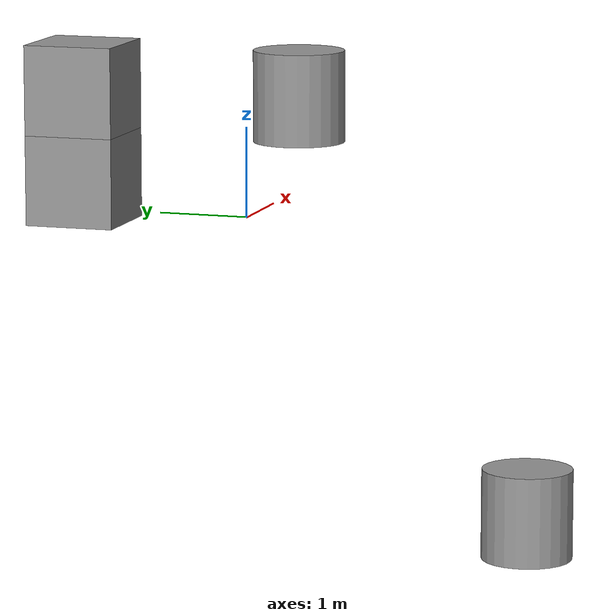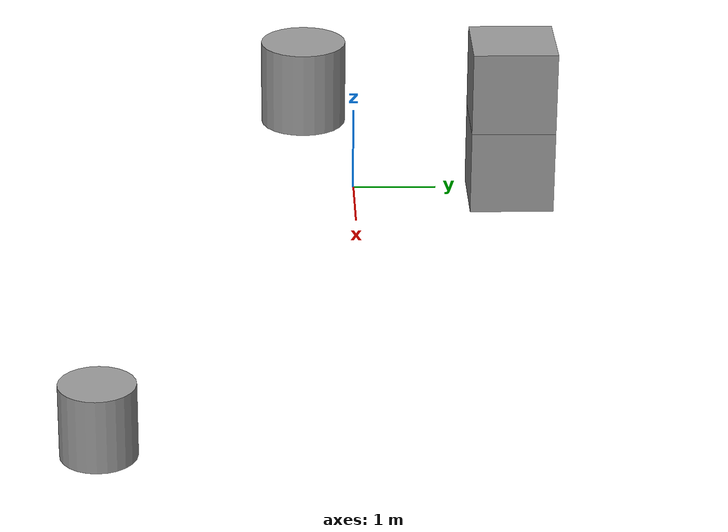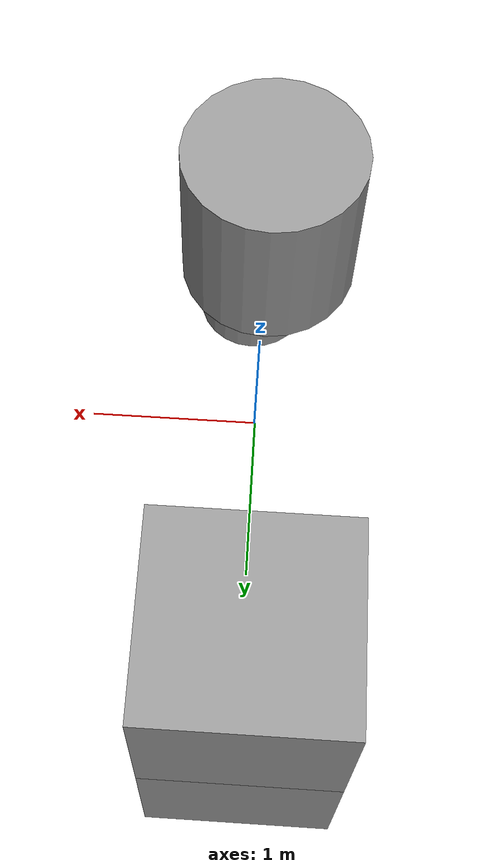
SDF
<?xml version='1.0'?>
<sdf version='1.6'>
  <model name='RobotArm'>
    <link name='link_2'>
      <inertial>
        <mass>1</mass>
        <inertia>
          <ixx>0.145833</ixx>
          <ixy>0</ixy>
          <ixz>0</ixz>
          <iyy>0.145833</iyy>
          <iyz>0</iyz>
          <izz>0.125</izz>
        </inertia>
      </inertial>
      <pose frame=''>0.06833 -3.17939 -3.125 0 -0 0</pose>
      <visual name='visual'>
        <pose frame=''>0 0 0 0 -0 0</pose>
        <geometry>
          <cylinder>
            <radius>0.5</radius>
            <length>1</length>
          </cylinder>
        </geometry>
        <material>
          <lighting>1</lighting>
          <script>
            <uri>file://media/materials/scripts/gazebo.material</uri>
            <name>Gazebo/Grey</name>
          </script>
          <emissive>0 0 0 1</emissive>
        </material>
        <transparency>0</transparency>
        <cast_shadows>1</cast_shadows>
      </visual>
      <collision name='collision'>
        <laser_retro>0</laser_retro>
        <max_contacts>10</max_contacts>
        <pose frame=''>0 0 0 0 -0 0</pose>
        <geometry>
          <cylinder>
            <radius>0.5</radius>
            <length>1</length>
          </cylinder>
        </geometry>
        <surface>
          <friction>
            <ode>
              <mu>1</mu>
              <mu2>1</mu2>
              <fdir1>0 0 0</fdir1>
              <slip1>0</slip1>
              <slip2>0</slip2>
            </ode>
            <torsional>
              <coefficient>1</coefficient>
              <patch_radius>0</patch_radius>
              <surface_radius>0</surface_radius>
              <use_patch_radius>1</use_patch_radius>
              <ode>
                <slip>0</slip>
              </ode>
            </torsional>
          </friction>
          <bounce>
            <restitution_coefficient>0</restitution_coefficient>
            <threshold>1e+06</threshold>
          </bounce>
          <contact>
            <collide_without_contact>0</collide_without_contact>
            <collide_without_contact_bitmask>1</collide_without_contact_bitmask>
            <collide_bitmask>1</collide_bitmask>
            <ode>
              <soft_cfm>0</soft_cfm>
              <soft_erp>0.2</soft_erp>
              <kp>1e+13</kp>
              <kd>1</kd>
              <max_vel>0.01</max_vel>
              <min_depth>0</min_depth>
            </ode>
            <bullet>
              <split_impulse>1</split_impulse>
              <split_impulse_penetration_threshold>-0.01</split_impulse_penetration_threshold>
              <soft_cfm>0</soft_cfm>
              <soft_erp>0.2</soft_erp>
              <kp>1e+13</kp>
              <kd>1</kd>
            </bullet>
          </contact>
        </surface>
      </collision>
    </link>
    <link name='link_3'>
      <inertial>
        <mass>1</mass>
        <inertia>
          <ixx>0.145833</ixx>
          <ixy>0</ixy>
          <ixz>0</ixz>
          <iyy>0.145833</iyy>
          <iyz>0</iyz>
          <izz>0.125</izz>
        </inertia>
        <pose frame=''>0 0 2.01 0 -0 0</pose>
      </inertial>
      <pose frame=''>-0.022777 -0.606869 1.375 0 -0 0</pose>
      <gravity>0</gravity>
      <self_collide>0</self_collide>
      <kinematic>0</kinematic>
      <enable_wind>0</enable_wind>
      <visual name='visual'>
        <pose frame=''>0 0 0 0 -0 0</pose>
        <geometry>
          <cylinder>
            <radius>0.5</radius>
            <length>1</length>
          </cylinder>
        </geometry>
        <material>
          <lighting>1</lighting>
          <script>
            <uri>file://media/materials/scripts/gazebo.material</uri>
            <name>Gazebo/Grey</name>
          </script>
          <shader type='vertex'>
            <normal_map>__default__</normal_map>
          </shader>
          <ambient>0.3 0.3 0.3 1</ambient>
          <diffuse>0.7 0.7 0.7 1</diffuse>
          <specular>0.01 0.01 0.01 1</specular>
          <emissive>0 0 0 1</emissive>
        </material>
        <transparency>0</transparency>
        <cast_shadows>1</cast_shadows>
      </visual>
      <collision name='collision'>
        <laser_retro>0</laser_retro>
        <max_contacts>10</max_contacts>
        <pose frame=''>0 0 0 0 -0 0</pose>
        <geometry>
          <cylinder>
            <radius>0.5</radius>
            <length>1</length>
          </cylinder>
        </geometry>
        <surface>
          <friction>
            <ode>
              <mu>1</mu>
              <mu2>1</mu2>
              <fdir1>0 0 0</fdir1>
              <slip1>0</slip1>
              <slip2>0</slip2>
            </ode>
            <torsional>
              <coefficient>1</coefficient>
              <patch_radius>0</patch_radius>
              <surface_radius>0</surface_radius>
              <use_patch_radius>1</use_patch_radius>
              <ode>
                <slip>0</slip>
              </ode>
            </torsional>
          </friction>
          <bounce>
            <restitution_coefficient>0</restitution_coefficient>
            <threshold>1e+06</threshold>
          </bounce>
          <contact>
            <collide_without_contact>0</collide_without_contact>
            <collide_without_contact_bitmask>1</collide_without_contact_bitmask>
            <collide_bitmask>1</collide_bitmask>
            <ode>
              <soft_cfm>0</soft_cfm>
              <soft_erp>0.2</soft_erp>
              <kp>1e+13</kp>
              <kd>1</kd>
              <max_vel>0.01</max_vel>
              <min_depth>0</min_depth>
            </ode>
            <bullet>
              <split_impulse>1</split_impulse>
              <split_impulse_penetration_threshold>-0.01</split_impulse_penetration_threshold>
              <soft_cfm>0</soft_cfm>
              <soft_erp>0.2</soft_erp>
              <kp>1e+13</kp>
              <kd>1</kd>
            </bullet>
          </contact>
        </surface>
      </collision>
    </link>
    <link name='link_4'>
      <inertial>
        <mass>1</mass>
        <inertia>
          <ixx>0.166667</ixx>
          <ixy>0</ixy>
          <ixz>0</ixz>
          <iyy>0.166667</iyy>
          <iyz>0</iyz>
          <izz>0.166667</izz>
        </inertia>
        <pose frame=''>0 0 0 0 -0 0</pose>
      </inertial>
      <pose frame=''>-0.022777 1.89313 1.375 0 -0 0</pose>
      <gravity>0</gravity>
      <self_collide>0</self_collide>
      <kinematic>0</kinematic>
      <enable_wind>0</enable_wind>
      <visual name='visual'>
        <pose frame=''>0 0 0 0 -0 0</pose>
        <geometry>
          <box>
            <size>1 1 1</size>
          </box>
        </geometry>
        <material>
          <lighting>1</lighting>
          <script>
            <uri>file://media/materials/scripts/gazebo.material</uri>
            <name>Gazebo/Grey</name>
          </script>
          <shader type='vertex'>
            <normal_map>__default__</normal_map>
          </shader>
          <ambient>0.3 0.3 0.3 1</ambient>
          <diffuse>0.7 0.7 0.7 1</diffuse>
          <specular>0.01 0.01 0.01 1</specular>
          <emissive>0 0 0 1</emissive>
        </material>
        <transparency>0</transparency>
        <cast_shadows>1</cast_shadows>
      </visual>
      <collision name='collision'>
        <laser_retro>0</laser_retro>
        <max_contacts>10</max_contacts>
        <pose frame=''>0 0 0 0 -0 0</pose>
        <geometry>
          <box>
            <size>1 1 1</size>
          </box>
        </geometry>
        <surface>
          <friction>
            <ode>
              <mu>1</mu>
              <mu2>1</mu2>
              <fdir1>0 0 0</fdir1>
              <slip1>0</slip1>
              <slip2>0</slip2>
            </ode>
            <torsional>
              <coefficient>1</coefficient>
              <patch_radius>0</patch_radius>
              <surface_radius>0</surface_radius>
              <use_patch_radius>1</use_patch_radius>
              <ode>
                <slip>0</slip>
              </ode>
            </torsional>
          </friction>
          <bounce>
            <restitution_coefficient>0</restitution_coefficient>
            <threshold>1e+06</threshold>
          </bounce>
          <contact>
            <collide_without_contact>0</collide_without_contact>
            <collide_without_contact_bitmask>1</collide_without_contact_bitmask>
            <collide_bitmask>1</collide_bitmask>
            <ode>
              <soft_cfm>0</soft_cfm>
              <soft_erp>0.2</soft_erp>
              <kp>1e+13</kp>
              <kd>1</kd>
              <max_vel>0.01</max_vel>
              <min_depth>0</min_depth>
            </ode>
            <bullet>
              <split_impulse>1</split_impulse>
              <split_impulse_penetration_threshold>-0.01</split_impulse_penetration_threshold>
              <soft_cfm>0</soft_cfm>
              <soft_erp>0.2</soft_erp>
              <kp>1e+13</kp>
              <kd>1</kd>
            </bullet>
          </contact>
        </surface>
      </collision>
    </link>
    <link name='link_5'>
      <inertial>
        <mass>1</mass>
        <inertia>
          <ixx>0.166667</ixx>
          <ixy>0</ixy>
          <ixz>0</ixz>
          <iyy>0.166667</iyy>
          <iyz>0</iyz>
          <izz>0.166667</izz>
        </inertia>
        <pose frame=''>0 0 0 0 -0 0</pose>
      </inertial>
      <pose frame=''>-0.022777 1.89313 0.375 0 -0 0</pose>
      <gravity>1</gravity>
      <self_collide>0</self_collide>
      <kinematic>0</kinematic>
      <enable_wind>0</enable_wind>
      <visual name='visual'>
        <pose frame=''>0 0 0 0 -0 0</pose>
        <geometry>
          <box>
            <size>1 1 1</size>
          </box>
        </geometry>
        <material>
          <lighting>1</lighting>
          <script>
            <uri>file://media/materials/scripts/gazebo.material</uri>
            <name>Gazebo/Grey</name>
          </script>
          <shader type='vertex'>
            <normal_map>__default__</normal_map>
          </shader>
          <ambient>0.3 0.3 0.3 1</ambient>
          <diffuse>0.7 0.7 0.7 1</diffuse>
          <specular>0.01 0.01 0.01 1</specular>
          <emissive>0 0 0 1</emissive>
        </material>
        <transparency>0</transparency>
        <cast_shadows>1</cast_shadows>
      </visual>
      <collision name='collision'>
        <laser_retro>0</laser_retro>
        <max_contacts>10</max_contacts>
        <pose frame=''>0 0 0 0 -0 0</pose>
        <geometry>
          <box>
            <size>1 1 1</size>
          </box>
        </geometry>
        <surface>
          <friction>
            <ode>
              <mu>1</mu>
              <mu2>1</mu2>
              <fdir1>0 0 0</fdir1>
              <slip1>0</slip1>
              <slip2>0</slip2>
            </ode>
            <torsional>
              <coefficient>1</coefficient>
              <patch_radius>0</patch_radius>
              <surface_radius>0</surface_radius>
              <use_patch_radius>1</use_patch_radius>
              <ode>
                <slip>0</slip>
              </ode>
            </torsional>
          </friction>
          <bounce>
            <restitution_coefficient>0</restitution_coefficient>
            <threshold>1e+06</threshold>
          </bounce>
          <contact>
            <collide_without_contact>0</collide_without_contact>
            <collide_without_contact_bitmask>1</collide_without_contact_bitmask>
            <collide_bitmask>1</collide_bitmask>
            <ode>
              <soft_cfm>0</soft_cfm>
              <soft_erp>0.2</soft_erp>
              <kp>1e+13</kp>
              <kd>1</kd>
              <max_vel>0.01</max_vel>
              <min_depth>0</min_depth>
            </ode>
            <bullet>
              <split_impulse>1</split_impulse>
              <split_impulse_penetration_threshold>-0.01</split_impulse_penetration_threshold>
              <soft_cfm>0</soft_cfm>
              <soft_erp>0.2</soft_erp>
              <kp>1e+13</kp>
              <kd>1</kd>
            </bullet>
          </contact>
        </surface>
      </collision>
    </link>
    <joint name='link_2_JOINT_0' type='revolute'>
      <parent>link_2</parent>
      <child>link_3</child>
      <pose frame=''>0 0 0 0 -0 0</pose>
      <axis>
        <xyz>1 0 0</xyz>
        <use_parent_model_frame>0</use_parent_model_frame>
        <limit>
          <lower>-1.79769e+308</lower>
          <upper>1.79769e+308</upper>
          <effort>-1</effort>
          <velocity>-1</velocity>
        </limit>
        <dynamics>
          <spring_reference>0</spring_reference>
          <spring_stiffness>0</spring_stiffness>
          <damping>0</damping>
        </dynamics>
      </axis>
      <physics>
        <ode>
          <limit>
            <cfm>0</cfm>
            <erp>0.2</erp>
          </limit>
          <suspension>
            <cfm>0</cfm>
            <erp>0.2</erp>
          </suspension>
        </ode>
      </physics>
    </joint>
    <joint name='link_3_JOINT_1' type='fixed'>
      <parent>link_3</parent>
      <child>link_4</child>
      <pose frame=''>0 0 0 0 -0 0</pose>
      <physics>
        <ode>
          <limit>
            <cfm>0</cfm>
            <erp>0.2</erp>
          </limit>
          <suspension>
            <cfm>0</cfm>
            <erp>0.2</erp>
          </suspension>
        </ode>
      </physics>
    </joint>
    <joint name='link_4_JOINT_2' type='prismatic'>
      <parent>link_4</parent>
      <child>link_5</child>
      <pose frame=''>0 0 0 0 -0 0</pose>
      <axis>
        <xyz>1 0 0</xyz>
        <use_parent_model_frame>0</use_parent_model_frame>
        <limit>
          <lower>-1.79769e+308</lower>
          <upper>1.79769e+308</upper>
          <effort>-1</effort>
          <velocity>-1</velocity>
        </limit>
        <dynamics>
          <spring_reference>0</spring_reference>
          <spring_stiffness>0</spring_stiffness>
          <damping>0</damping>
        </dynamics>
      </axis>
      <physics>
        <ode>
          <limit>
            <cfm>0</cfm>
            <erp>0.2</erp>
          </limit>
          <suspension>
            <cfm>0</cfm>
            <erp>0.2</erp>
          </suspension>
        </ode>
      </physics>
    </joint>
    <static>0</static>
    <allow_auto_disable>1</allow_auto_disable>
  </model>
</sdf>
